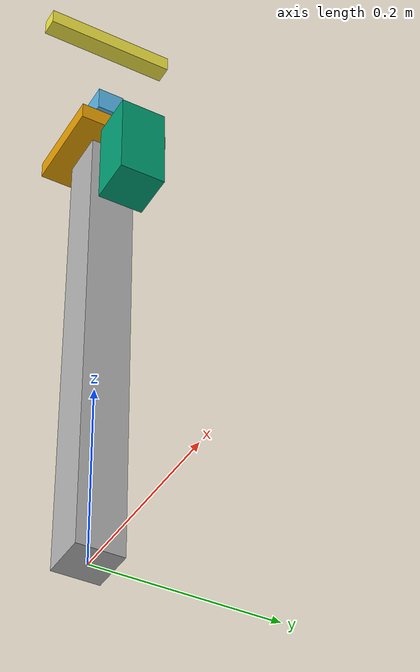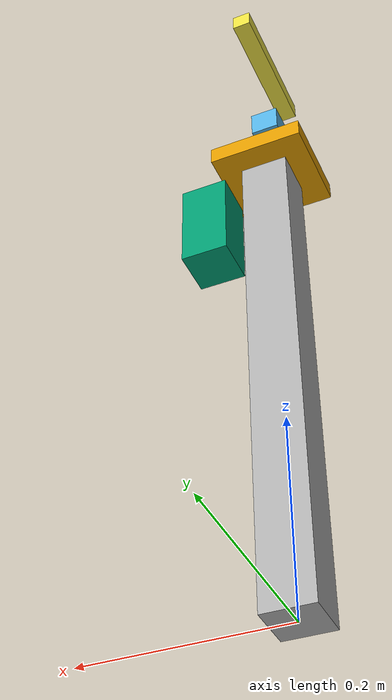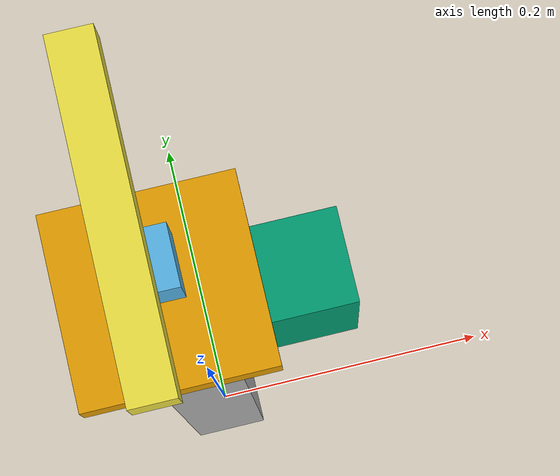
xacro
<?xml version="1.0"?>
<robot xmlns:xacro="http://www.ros.org/wiki/xacro" name="post">

    <transmission name="lidar_trans">
      <type>transmission_interface/SimpleTransmission</type>
      <joint name="lidar_rad">
        <hardwareInterface>EffortJointInterface</hardwareInterface>
      </joint>
      <actuator name="lidar_motor">
        <hardwareInterface>EffortJointInterface</hardwareInterface>
        <mechanicalReduction>1</mechanicalReduction>
      </actuator>
    </transmission>

    <transmission name="pan_trans">
      <type>transmission_interface/SimpleTransmission</type>
      <joint name="xtion_pan">
        <hardwareInterface>EffortJointInterface</hardwareInterface>
      </joint>
      <actuator name="pan_motor">
        <hardwareInterface>EffortJointInterface</hardwareInterface>
        <mechanicalReduction>1</mechanicalReduction>
      </actuator>
    </transmission>

    <transmission name="tilt_trans">
      <type>transmission_interface/SimpleTransmission</type>
      <joint name="xtion_tilt">
        <hardwareInterface>EffortJointInterface</hardwareInterface>
      </joint>
      <actuator name="tilt_motor">
        <hardwareInterface>EffortJointInterface</hardwareInterface>
        <mechanicalReduction>1</mechanicalReduction>
      </actuator>
    </transmission>

    <xacro:include filename="$(find post_description)/urdf/xtion.urdf.xacro"/>

    <link name="post_base">
        <inertial>
        <origin xyz="0 0 0" rpy="0 0 0"/>
        <mass value="0.01"/>
        <inertia ixx="0.01"  ixy="0"  ixz="0" iyy="0.01" iyz="0" izz="0.01" />
      </inertial>
      <visual>
            <origin xyz="0 0 0.265" rpy="0 0 0"/>
            <geometry>
                <box size="0.05 0.05 0.53" />
            </geometry>
      </visual>
      <collision>
            <origin xyz="0 0 2.265" rpy="0 0 0"/>
            <geometry>
                <box size="0.05 0.05 0.53" />
            </geometry>
      </collision>
    </link>

    <joint name="xtion_fixture_joint" type="fixed">
        <parent link="post_base"/>
        <child link="xtion_base"/>
        <origin xyz="0 0 0.53" rpy="0 0 1.5707"/>
        <axis xyz="0 0 0"/>
    </joint>

    <joint name="lidar_rad" type="revolute">
        <parent link="post_base"/>
        <child link="spindar_base"/>
        <origin xyz="0 0 0.435" rpy="0 0 0"/>
        <axis xyz="1 0 0"/>
        <limit effort="10.0" velocity="1.0" lower="-3.1415" upper="3.1415"/>
    </joint>

    <link name="spindar_base">
    </link>

    <joint name="lidar_base_joint" type="fixed">
        <parent link="post_base"/>
        <child link="lidar_base"/>
        <origin xyz="0 0 0.435" rpy="0 0 0"/>
        <axis xyz="1 0 0"/>
        <limit effort="10.0" velocity="1.0" lower="-3.1415" upper="3.1415"/>
    </joint>

     <link name="lidar_base">
     </link>

    <joint name="spindar_pos" type="fixed">
        <parent link="spindar_base"/>
        <child link="laser"/>
        <origin xyz="0.07 0 0.03" rpy="0 0 0"/>
        <axis xyz="1 0 0"/>
    </joint>

    <link name="laser">
        <inertial>
        <origin xyz="0 0 0" rpy="0 0 0"/>
        <mass value="0.01"/>
        <inertia ixx="0.01"  ixy="0"  ixz="0" iyy="0.01" iyz="0" izz="0.01" />
      </inertial>
      <visual>
            <origin xyz="0 0 0" rpy="0 0 0"/>
            <geometry>
                <box size="0.05 0.05 0.1" />
            </geometry>
      </visual>
    </link>

    <gazebo>
        <plugin name="gazebo_ros_control" filename="libgazebo_ros_control.so">
        <robotNamespace>/post</robotNamespace>
        </plugin>
    </gazebo>

    <gazebo reference="camera_depth_optical_frame">
      <sensor name="xtion" type="depth">
          <plugin name="camera_controller" filename="libgazebo_ros_openni_kinect.so">
            <baseline>0.2</baseline>
            <alwaysOn>true</alwaysOn>
            <updateRate>1.0</updateRate>
            <cameraName>camera_ir</cameraName>
            <imageTopicName>/camera/depth/image_raw</imageTopicName>
            <cameraInfoTopicName>/camera/depth/camera_info</cameraInfoTopicName>
            <depthImageTopicName>/camera/depth/image_raw</depthImageTopicName>
            <depthImageInfoTopicName>/camera/depth/camera_info</depthImageInfoTopicName>
            <pointCloudTopicName>/camera/depth/points</pointCloudTopicName>
            <frameName>camera_depth_optical_frame_virtual</frameName>
            <pointCloudCutoff>0.5</pointCloudCutoff>
            <distortionK1>0.00000001</distortionK1>
            <distortionK2>0.00000001</distortionK2>
            <distortionK3>0.00000001</distortionK3>
            <distortionT1>0.00000001</distortionT1>
            <distortionT2>0.00000001</distortionT2>
            <CxPrime>0</CxPrime>
            <Cx>0</Cx>
            <Cy>0</Cy>
            <focalLength>0</focalLength>
            <hackBaseline>0</hackBaseline>
          </plugin>
      </sensor>
    </gazebo>

    <gazebo reference="laser">
    <sensor type="ray" name="head_hokuyo_sensor">
      <pose>0 0 0 0 0 0</pose>
      <visualize>false</visualize>
      <update_rate>5</update_rate>
      <ray>
        <scan>
          <horizontal>
            <samples>720</samples>
            <resolution>1</resolution>
            <min_angle>-1.570796</min_angle>
            <max_angle>1.570796</max_angle>
          </horizontal>
        </scan>
        <range>
          <min>0.10</min>
          <max>10.0</max>
          <resolution>0.01</resolution>
        </range>
        <noise>
          <type>gaussian</type>
          <mean>0.0</mean>
          <stddev>0.01</stddev>
        </noise>
      </ray>
      <plugin name="gazebo_ros_head_hokuyo_controller" filename="libgazebo_ros_laser.so">
        <topicName>/laser</topicName>
        <frameName>laser</frameName>
      </plugin>
    </sensor>
  </gazebo>

</robot>

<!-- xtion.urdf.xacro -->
<robot xmlns:xacro="http://www.ros.org/wiki/xacro">

  <xacro:parameter name="pi" value="3.1415"/>

    <link name="xtion_base">
      <inertial>
        <origin xyz="0 0 0" rpy="0 0 0"/>
        <mass value="0.01"/>
        <inertia ixx="0.01"  ixy="0"  ixz="0" iyy="0.01" iyz="0" izz="0.01" />
      </inertial>
      <visual>
            <origin xyz="0 0 0" rpy="0 0 0"/>
            <geometry>
                <box size="0.10 0.10 0.02" />
            </geometry>
        </visual>
    </link>

    <joint name="xtion_pan" type="revolute">
        <parent link="xtion_base"/>
        <child link="xtion_inter_link"/>
        <origin xyz="0 0 0.075" rpy="0 0 0"/>
        <axis xyz="0 0 1"/>
        <limit effort="100.0" velocity="1.0" lower="-3.1415" upper="3.1415"/>
    </joint>

    <link name="xtion_inter_link">
      <inertial>
        <origin xyz="0 0 0" rpy="0 0 0"/>
        <mass value="0.01"/>
        <inertia ixx="0.01"  ixy="0"  ixz="0" iyy="0.01" iyz="0" izz="0.01" />
      </inertial>
      <visual>
            <origin xyz="0 0 0" rpy="0 0 0"/>
            <geometry>
                <box size="0.03 0.03 0.03" />
            </geometry>
        </visual>
    </link>

    <joint name="xtion_tilt" type="revolute">
        <origin xyz="0 0 0.045" rpy="0 0 0"/>
        <parent link="xtion_inter_link"/>
        <child link="xtion_proto_link"/>
        <axis xyz=" -1 0 0"/>
        <limit effort="100.0" velocity="1.0" lower="-1.5707" upper="1.5707"/>
    </joint>

    <link name="xtion_proto_link">
      <inertial>
        <origin xyz="0 0 0" rpy="0 0 0"/>
        <mass value="0.01"/>
        <inertia ixx="0.01"  ixy="0"  ixz="0" iyy="0.01" iyz="0" izz="0.01" />
      </inertial>
    </link>

    <joint name="xtion_attachment" type="fixed">
        <parent link="xtion_proto_link"/>
        <child link="xtion_camera_link"/>
        <origin xyz="0 0 0.07" rpy="0 0 0"/>
        <axis xyz="0 0 1"/>
    </joint>

    <link name="xtion_camera_link">
      <inertial>
        <origin xyz="0 0 0" rpy="0 0 0"/>
        <mass value="0.01"/>
        <inertia ixx="0.01"  ixy="0"  ixz="0" iyy="0.01" iyz="0" izz="0.01" />
      </inertial>
      <visual>
            <origin xyz="0 0 0" rpy="0 0 0"/>
            <geometry>
                <box size="0.15 0.02 0.02" />
            </geometry>
        </visual>
    </link>

    <joint name="xtion_etc1" type="fixed">
        <parent link="xtion_camera_link"/>
        <child link="camera_frame_inter_link"/>
        <origin xyz="0 0 0.0" rpy="0 0 0"/>
        <axis xyz="0 0 1"/>
    </joint>

    <link name="camera_frame_inter_link"/>

    <joint name="xtion_etc2" type="fixed">
        <parent link="camera_frame_inter_link"/>
        <child link="camera_depth_optical_frame"/>
        <origin xyz="0 0 0.0" rpy="0 0 -1.5707"/>
        <axis xyz="0 0 1"/>
    </joint>

    <link name="camera_depth_optical_frame">
      <inertial>
        <origin xyz="0 0 0" rpy="0 0 0"/>
        <mass value="0.01"/>
        <inertia ixx="0.01"  ixy="0"  ixz="0" iyy="0.01" iyz="0" izz="0.01" />
      </inertial>
    </link>

    <joint name="camera_optical_joint" type="fixed">
    <!-- these values have to be these values otherwise the gazebo camera
        image won't be aligned properly with the frame it is supposedly
        originating from -->
    <origin xyz="0 0 0" rpy="-1.5707 0 -1.5707"/>
    <parent link="camera_depth_optical_frame"/>
    <child link="camera_depth_optical_frame_virtual"/>
  </joint>

    <link name="camera_depth_optical_frame_virtual"/>

</robot>
